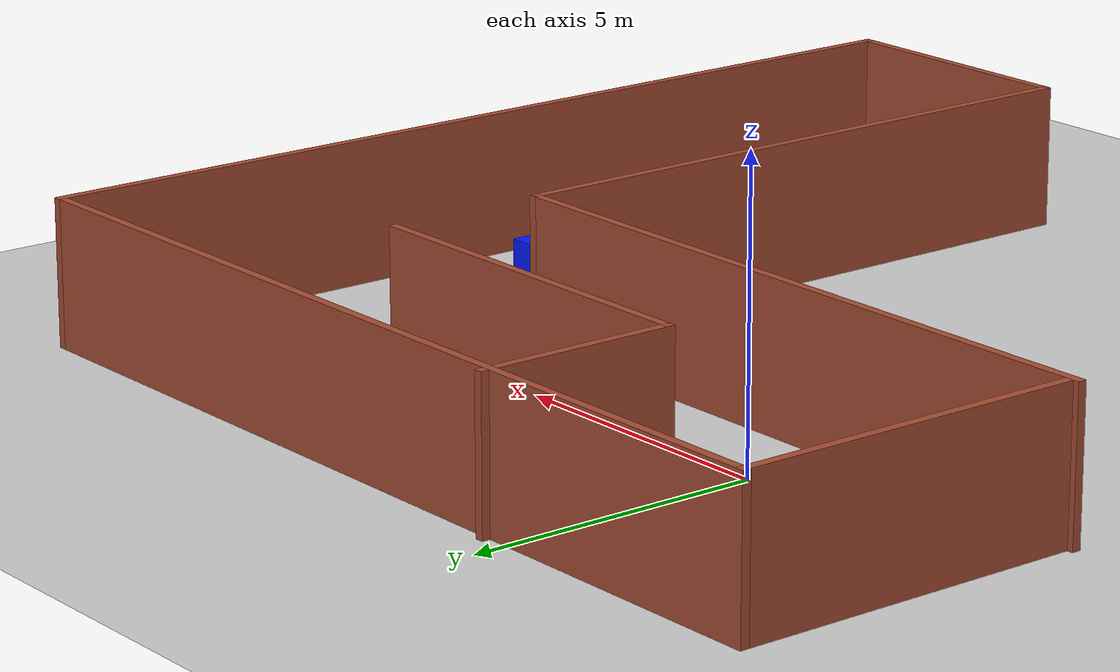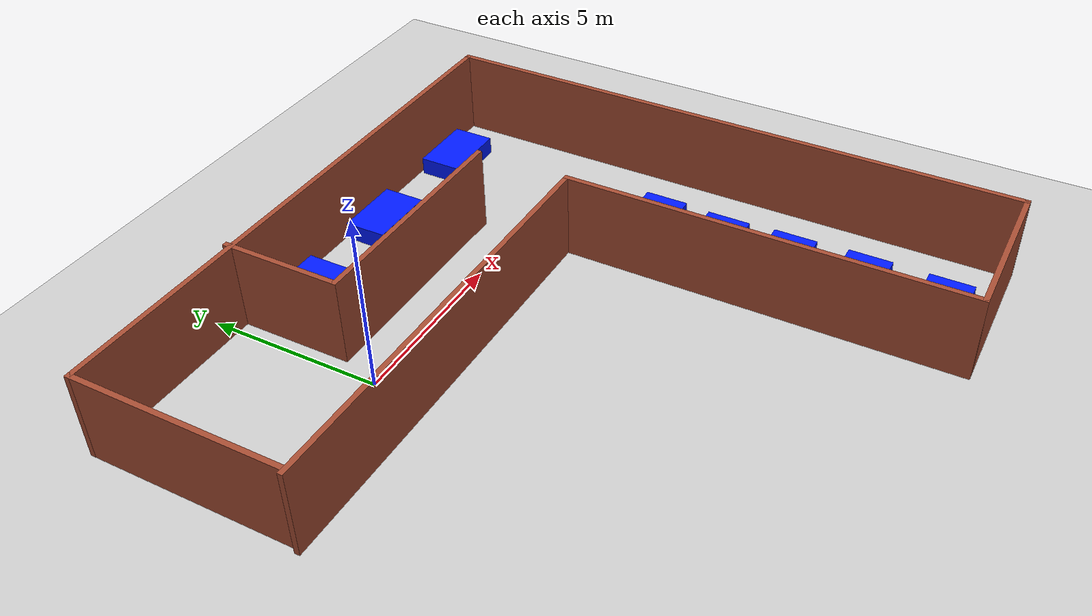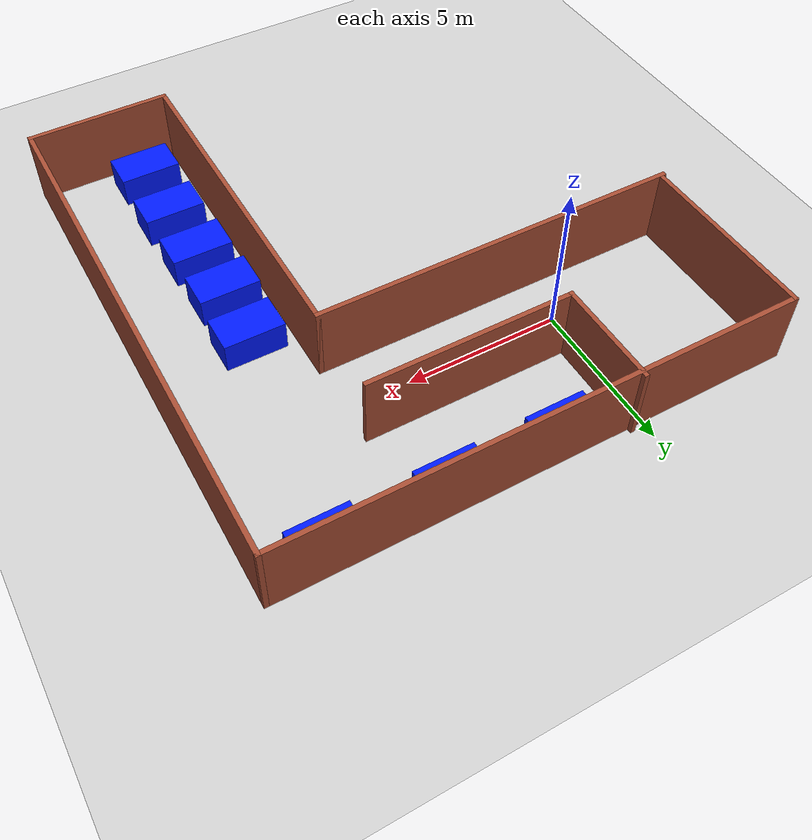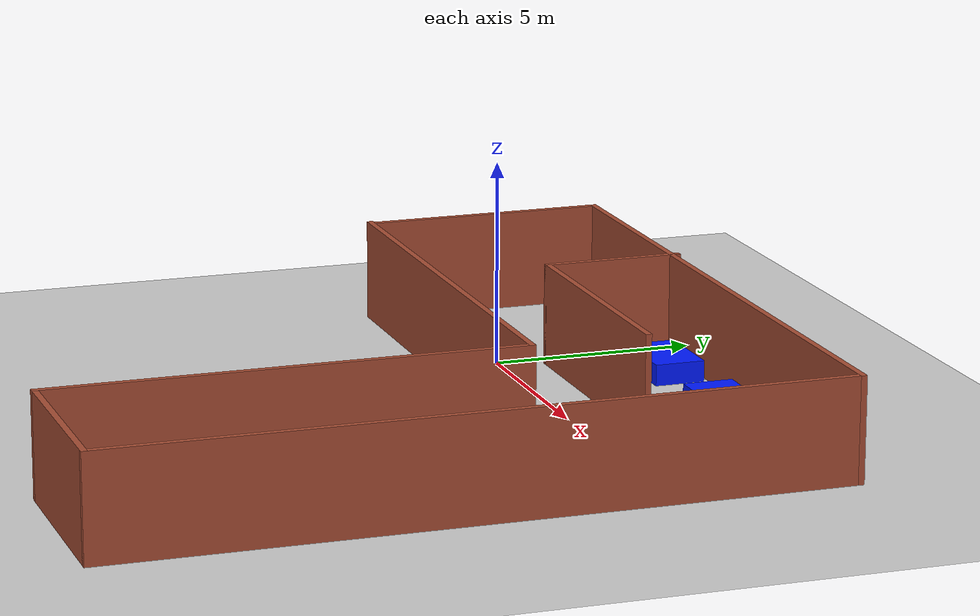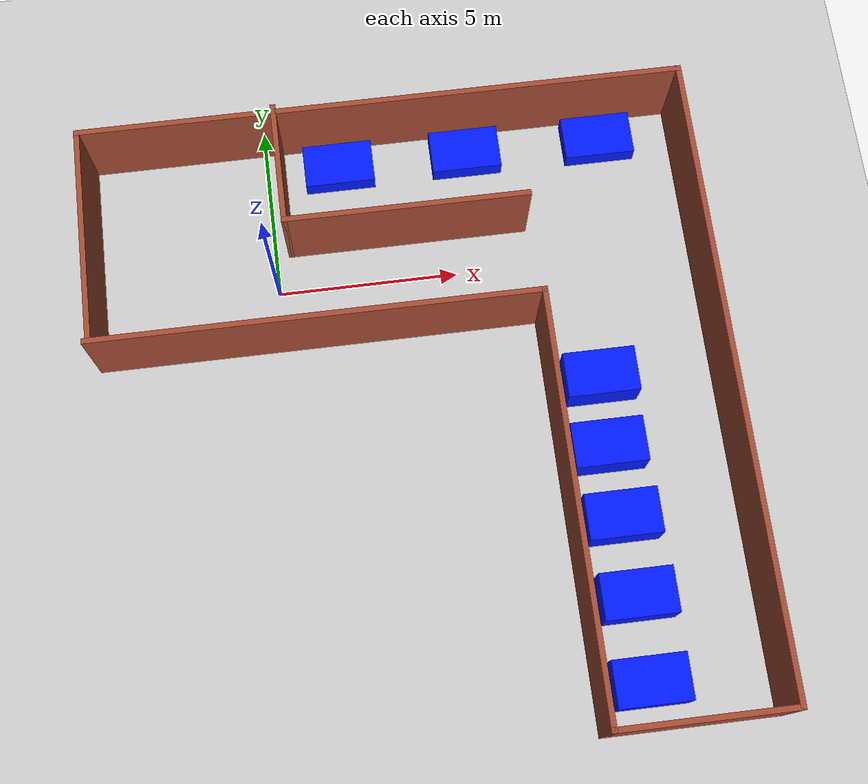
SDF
<sdf version="1.6">
 <world name="default">
  <light name="sun" type="directional">
   <pose>0 0 10 0 -0 0</pose>
   <diffuse>0.8 0.8 0.8 1</diffuse>
   <specular>0.2 0.2 0.2 1</specular>
   <attenuation>
    <range>1000</range>
    <constant>0.9</constant>
    <linear>0.01</linear>
    <quadratic>0.001</quadratic>
   </attenuation>
   <direction>-0.5 0.1 -0.9</direction>
  </light>
  <model name="ground_plane">
   <static>1</static>
   <link name="link">
    <collision name="collision">
     <geometry><plane><normal>0 0 1</normal><size>100 100</size></plane></geometry>
     <surface>
      <contact><collide_bitmask>65535</collide_bitmask></contact>
      <friction><ode><mu>100</mu><mu2>50</mu2></ode></friction>
     </surface>
    </collision>
    <visual name="visual">
     <cast_shadows>0</cast_shadows>
     <geometry><plane><normal>0 0 1</normal><size>100 100</size></plane></geometry>
     <material>
      <script><uri>file://media/materials/scripts/gazebo.material</uri><name>Gazebo/Grey</name></script>
     </material>
    </visual>
   </link>
  </model>
  <gravity>0 0 -9.8</gravity>
  <magnetic_field>6e-06 2.3e-05 -4.2e-05</magnetic_field>
  <atmosphere type="adiabatic"/>
  <physics name="default_physics" default="0" type="ode">
   <max_step_size>0.001</max_step_size>
   <real_time_factor>1</real_time_factor>
   <real_time_update_rate>1000</real_time_update_rate>
  </physics>
  <scene><ambient>0.4 0.4 0.4 1</ambient><background>0.7 0.7 0.7 1</background><shadows>1</shadows></scene>
  <audio><device>default</device></audio>
  <spherical_coordinates>
   <surface_model>EARTH_WGS84</surface_model>
   <latitude_deg>0</latitude_deg>
   <longitude_deg>0</longitude_deg>
   <elevation>0</elevation>
   <heading_deg>0</heading_deg>
  </spherical_coordinates>
  <model name="walls">
   <pose>3.31611 -4.23388 0 0 -0 0</pose>
   <link name="Wall_0">
    <collision name="Wall_0_Collision">
     <geometry><box><size>12.25 0.15 2.5</size></box></geometry>
     <pose>0 0 1.25 0 -0 0</pose>
    </collision>
    <visual name="Wall_0_Visual">
     <pose>0 0 1.25 0 -0 0</pose>
     <geometry><box><size>12.25 0.15 2.5</size></box></geometry>
     <material>
      <script><uri>file://media/materials/scripts/gazebo.material</uri><name>Gazebo/Bricks</name></script>
      <ambient>1 1 1 1</ambient>
     </material>
     <meta><layer>0</layer></meta>
    </visual>
    <pose>-2.3 2.60464 0 0 -0 0</pose>
   </link>
   <link name="Wall_10">
    <collision name="Wall_10_Collision">
     <geometry><box><size>6.75 0.15 2.5</size></box></geometry>
     <pose>0 0 1.25 0 -0 0</pose>
    </collision>
    <visual name="Wall_10_Visual">
     <pose>0 0 1.25 0 -0 0</pose>
     <geometry><box><size>6.75 0.15 2.5</size></box></geometry>
     <material>
      <script><uri>file://media/materials/scripts/gazebo.material</uri><name>Gazebo/Bricks</name></script>
      <ambient>1 1 1 1</ambient>
     </material>
     <meta><layer>0</layer></meta>
    </visual>
    <pose>0.421164 5.39536 0 0 -0 0</pose>
   </link>
   <link name="Wall_3">
    <collision name="Wall_3_Collision">
     <geometry><box><size>11.5 0.15 2.5</size></box></geometry>
     <pose>0 0 1.25 0 -0 0</pose>
    </collision>
    <visual name="Wall_3_Visual">
     <pose>0 0 1.25 0 -0 0</pose>
     <geometry><box><size>11.5 0.15 2.5</size></box></geometry>
     <material>
      <script><uri>file://media/materials/scripts/gazebo.material</uri><name>Gazebo/Bricks</name></script>
      <ambient>1 1 1 1</ambient>
     </material>
     <meta><layer>0</layer></meta>
    </visual>
    <pose>3.75 -3.07036 0 0 -0 -1.5708</pose>
   </link>
   <link name="Wall_4">
    <collision name="Wall_4_Collision">
     <geometry><box><size>4.75 0.15 2.5</size></box></geometry>
     <pose>0 0 1.25 0 -0 0</pose>
    </collision>
    <visual name="Wall_4_Visual">
     <pose>0 0 1.25 0 -0 0</pose>
     <geometry><box><size>4.75 0.15 2.5</size></box></geometry>
     <material>
      <script><uri>file://media/materials/scripts/gazebo.material</uri><name>Gazebo/Bricks</name></script>
      <ambient>1 1 1 1</ambient>
     </material>
     <meta><layer>0</layer></meta>
    </visual>
    <pose>6.05 -8.74536 0 0 -0 0</pose>
   </link>
   <link name="Wall_5">
    <collision name="Wall_5_Collision">
     <geometry><box><size>17.5 0.15 2.5</size></box></geometry>
     <pose>0 0 1.25 0 -0 0</pose>
    </collision>
    <visual name="Wall_5_Visual">
     <pose>0 0 1.25 0 -0 0</pose>
     <geometry><box><size>17.5 0.15 2.5</size></box></geometry>
     <material>
      <script><uri>file://media/materials/scripts/gazebo.material</uri><name>Gazebo/Bricks</name></script>
      <ambient>1 1 1 1</ambient>
     </material>
     <meta><layer>0</layer></meta>
    </visual>
    <pose>8.35 -0.070364 0 0 -0 1.5708</pose>
   </link>
   <link name="Wall_6">
    <collision name="Wall_6_Collision">
     <geometry><box><size>16.75 0.15 2.5</size></box></geometry>
     <pose>0 0 1.25 0 -0 0</pose>
    </collision>
    <visual name="Wall_6_Visual">
     <pose>0 0 1.25 0 -0 0</pose>
     <geometry><box><size>16.75 0.15 2.5</size></box></geometry>
     <material>
      <script><uri>file://media/materials/scripts/gazebo.material</uri><name>Gazebo/Bricks</name></script>
      <ambient>1 1 1 1</ambient>
     </material>
     <meta><layer>0</layer></meta>
    </visual>
    <pose>0.05 8.60464 0 0 -0 3.14159</pose>
   </link>
   <link name="Wall_7">
    <collision name="Wall_7_Collision">
     <geometry><box><size>6 0.15 2.5</size></box></geometry>
     <pose>0 0 1.25 0 -0 0</pose>
    </collision>
    <visual name="Wall_7_Visual">
     <pose>0 0 1.25 0 -0 0</pose>
     <geometry><box><size>6 0.15 2.5</size></box></geometry>
     <material>
      <script><uri>file://media/materials/scripts/gazebo.material</uri><name>Gazebo/Bricks</name></script>
      <ambient>1 1 1 1</ambient>
     </material>
     <meta><layer>0</layer></meta>
    </visual>
    <pose>-8.25 5.67964 0 0 -0 -1.5708</pose>
   </link>
   <link name="Wall_9">
    <collision name="Wall_9_Collision">
     <geometry><box><size>3.5 0.15 2.5</size></box></geometry>
     <pose>0 0 1.25 0 -0 0</pose>
    </collision>
    <visual name="Wall_9_Visual">
     <pose>0 0 1.25 0 -0 0</pose>
     <geometry><box><size>3.5 0.15 2.5</size></box></geometry>
     <material>
      <script><uri>file://media/materials/scripts/gazebo.material</uri><name>Gazebo/Bricks</name></script>
      <ambient>1 1 1 1</ambient>
     </material>
     <meta><layer>0</layer></meta>
    </visual>
    <pose>-2.87884 7.07036 0 0 -0 -1.5708</pose>
   </link>
   <static>1</static>
  </model>
  <model name="bed1">
   <link name="link">
    <inertial>
     <mass>1</mass>
     <inertia>
      <ixx>0.166667</ixx>
      <ixy>0</ixy>
      <ixz>0</ixz>
      <iyy>0.166667</iyy>
      <iyz>0</iyz>
      <izz>0.166667</izz>
     </inertia>
    </inertial>
    <visual name="visual">
     <geometry><box><size>1.96278 1.23701 1</size></box></geometry>
     <material>
      <script><name>Gazebo/Grey</name><uri>file://media/materials/scripts/gazebo.material</uri></script>
      <diffuse>0 0.1 1 0</diffuse>
      <shader type="vertex"><normal_map>__default__</normal_map></shader>
      <ambient>0.3 0.3 0.3 1</ambient>
      <specular>0.01 0.01 0.01 1</specular>
      <emissive>0 0 0 1</emissive>
     </material>
    </visual>
    <collision name="collision">
     <geometry><box><size>1.96278 1.23701 1</size></box></geometry>
     <surface>
      <friction>
       <ode><mu>1</mu><mu2>1</mu2><fdir1>0 0 0</fdir1><slip1>0</slip1><slip2>0</slip2></ode>
       <torsional>
        <coefficient>1</coefficient>
        <patch_radius>0</patch_radius>
        <surface_radius>0</surface_radius>
        <use_patch_radius>1</use_patch_radius>
        <ode><slip>0</slip></ode>
       </torsional>
      </friction>
      <bounce><restitution_coefficient>0</restitution_coefficient><threshold>1e+06</threshold></bounce>
      <contact>
       <collide_without_contact>0</collide_without_contact>
       <collide_without_contact_bitmask>1</collide_without_contact_bitmask>
       <collide_bitmask>1</collide_bitmask>
       <ode>
        <soft_cfm>0</soft_cfm>
        <soft_erp>0.2</soft_erp>
        <kp>1e+13</kp>
        <kd>1</kd>
        <max_vel>0.01</max_vel>
        <min_depth>0</min_depth>
       </ode>
       <bullet>
        <split_impulse>1</split_impulse>
        <split_impulse_penetration_threshold>-0.01</split_impulse_penetration_threshold>
        <soft_cfm>0</soft_cfm>
        <soft_erp>0.2</soft_erp>
        <kp>1e+13</kp>
        <kd>1</kd>
       </bullet>
      </contact>
     </surface>
    </collision>
   </link>
   <static>0</static>
   <pose>8.44882 -11.8287 0.5 0 -0 0</pose>
  </model>
  <model name="bed1_clone">
   <link name="link">
    <inertial>
     <mass>1</mass>
     <inertia>
      <ixx>0.166667</ixx>
      <ixy>0</ixy>
      <ixz>0</ixz>
      <iyy>0.166667</iyy>
      <iyz>0</iyz>
      <izz>0.166667</izz>
     </inertia>
    </inertial>
    <visual name="visual">
     <geometry><box><size>1.96278 1.23701 1</size></box></geometry>
     <material>
      <script><name>Gazebo/Grey</name><uri>file://media/materials/scripts/gazebo.material</uri></script>
      <diffuse>0 0.1 1 0</diffuse>
      <shader type="vertex"><normal_map>__default__</normal_map></shader>
      <ambient>0.3 0.3 0.3 1</ambient>
      <specular>0.01 0.01 0.01 1</specular>
      <emissive>0 0 0 1</emissive>
     </material>
    </visual>
    <collision name="collision">
     <geometry><box><size>1.96278 1.23701 1</size></box></geometry>
     <surface>
      <friction>
       <ode><mu>1</mu><mu2>1</mu2><fdir1>0 0 0</fdir1><slip1>0</slip1><slip2>0</slip2></ode>
       <torsional>
        <coefficient>1</coefficient>
        <patch_radius>0</patch_radius>
        <surface_radius>0</surface_radius>
        <use_patch_radius>1</use_patch_radius>
        <ode><slip>0</slip></ode>
       </torsional>
      </friction>
      <bounce><restitution_coefficient>0</restitution_coefficient><threshold>1e+06</threshold></bounce>
      <contact>
       <collide_without_contact>0</collide_without_contact>
       <collide_without_contact_bitmask>1</collide_without_contact_bitmask>
       <collide_bitmask>1</collide_bitmask>
       <ode>
        <soft_cfm>0</soft_cfm>
        <soft_erp>0.2</soft_erp>
        <kp>1e+13</kp>
        <kd>1</kd>
        <max_vel>0.01</max_vel>
        <min_depth>0</min_depth>
       </ode>
       <bullet>
        <split_impulse>1</split_impulse>
        <split_impulse_penetration_threshold>-0.01</split_impulse_penetration_threshold>
        <soft_cfm>0</soft_cfm>
        <soft_erp>0.2</soft_erp>
        <kp>1e+13</kp>
        <kd>1</kd>
       </bullet>
      </contact>
     </surface>
    </collision>
   </link>
   <static>0</static>
   <pose>8.47796 -9.61239 0.5 0 -0 0</pose>
  </model>
  <model name="bed1_clone_0">
   <link name="link">
    <inertial>
     <mass>1</mass>
     <inertia>
      <ixx>0.166667</ixx>
      <ixy>0</ixy>
      <ixz>0</ixz>
      <iyy>0.166667</iyy>
      <iyz>0</iyz>
      <izz>0.166667</izz>
     </inertia>
    </inertial>
    <visual name="visual">
     <geometry><box><size>1.96278 1.23701 1</size></box></geometry>
     <material>
      <script><name>Gazebo/Grey</name><uri>file://media/materials/scripts/gazebo.material</uri></script>
      <diffuse>0 0.1 1 0</diffuse>
      <shader type="vertex"><normal_map>__default__</normal_map></shader>
      <ambient>0.3 0.3 0.3 1</ambient>
      <specular>0.01 0.01 0.01 1</specular>
      <emissive>0 0 0 1</emissive>
     </material>
    </visual>
    <collision name="collision">
     <geometry><box><size>1.96278 1.23701 1</size></box></geometry>
     <surface>
      <friction>
       <ode><mu>1</mu><mu2>1</mu2><fdir1>0 0 0</fdir1><slip1>0</slip1><slip2>0</slip2></ode>
       <torsional>
        <coefficient>1</coefficient>
        <patch_radius>0</patch_radius>
        <surface_radius>0</surface_radius>
        <use_patch_radius>1</use_patch_radius>
        <ode><slip>0</slip></ode>
       </torsional>
      </friction>
      <bounce><restitution_coefficient>0</restitution_coefficient><threshold>1e+06</threshold></bounce>
      <contact>
       <collide_without_contact>0</collide_without_contact>
       <collide_without_contact_bitmask>1</collide_without_contact_bitmask>
       <collide_bitmask>1</collide_bitmask>
       <ode>
        <soft_cfm>0</soft_cfm>
        <soft_erp>0.2</soft_erp>
        <kp>1e+13</kp>
        <kd>1</kd>
        <max_vel>0.01</max_vel>
        <min_depth>0</min_depth>
       </ode>
       <bullet>
        <split_impulse>1</split_impulse>
        <split_impulse_penetration_threshold>-0.01</split_impulse_penetration_threshold>
        <soft_cfm>0</soft_cfm>
        <soft_erp>0.2</soft_erp>
        <kp>1e+13</kp>
        <kd>1</kd>
       </bullet>
      </contact>
     </surface>
    </collision>
   </link>
   <static>0</static>
   <pose>8.41969 -7.507 0.5 0 -0 0</pose>
  </model>
  <model name="bed1_clone_1">
   <link name="link">
    <inertial>
     <mass>1</mass>
     <inertia>
      <ixx>0.166667</ixx>
      <ixy>0</ixy>
      <ixz>0</ixz>
      <iyy>0.166667</iyy>
      <iyz>0</iyz>
      <izz>0.166667</izz>
     </inertia>
    </inertial>
    <visual name="visual">
     <geometry><box><size>1.96278 1.23701 1</size></box></geometry>
     <material>
      <script><name>Gazebo/Grey</name><uri>file://media/materials/scripts/gazebo.material</uri></script>
      <diffuse>0 0.1 1 0</diffuse>
      <shader type="vertex"><normal_map>__default__</normal_map></shader>
      <ambient>0.3 0.3 0.3 1</ambient>
      <specular>0.01 0.01 0.01 1</specular>
      <emissive>0 0 0 1</emissive>
     </material>
    </visual>
    <collision name="collision">
     <geometry><box><size>1.96278 1.23701 1</size></box></geometry>
     <surface>
      <friction>
       <ode><mu>1</mu><mu2>1</mu2><fdir1>0 0 0</fdir1><slip1>0</slip1><slip2>0</slip2></ode>
       <torsional>
        <coefficient>1</coefficient>
        <patch_radius>0</patch_radius>
        <surface_radius>0</surface_radius>
        <use_patch_radius>1</use_patch_radius>
        <ode><slip>0</slip></ode>
       </torsional>
      </friction>
      <bounce><restitution_coefficient>0</restitution_coefficient><threshold>1e+06</threshold></bounce>
      <contact>
       <collide_without_contact>0</collide_without_contact>
       <collide_without_contact_bitmask>1</collide_without_contact_bitmask>
       <collide_bitmask>1</collide_bitmask>
       <ode>
        <soft_cfm>0</soft_cfm>
        <soft_erp>0.2</soft_erp>
        <kp>1e+13</kp>
        <kd>1</kd>
        <max_vel>0.01</max_vel>
        <min_depth>0</min_depth>
       </ode>
       <bullet>
        <split_impulse>1</split_impulse>
        <split_impulse_penetration_threshold>-0.01</split_impulse_penetration_threshold>
        <soft_cfm>0</soft_cfm>
        <soft_erp>0.2</soft_erp>
        <kp>1e+13</kp>
        <kd>1</kd>
       </bullet>
      </contact>
     </surface>
    </collision>
   </link>
   <static>0</static>
   <pose>8.35928 -5.55696 0.5 0 -0 0</pose>
  </model>
  <model name="bed1_clone_2">
   <link name="link">
    <inertial>
     <mass>1</mass>
     <inertia>
      <ixx>0.166667</ixx>
      <ixy>0</ixy>
      <ixz>0</ixz>
      <iyy>0.166667</iyy>
      <iyz>0</iyz>
      <izz>0.166667</izz>
     </inertia>
    </inertial>
    <visual name="visual">
     <geometry><box><size>1.96278 1.23701 1</size></box></geometry>
     <material>
      <script><name>Gazebo/Grey</name><uri>file://media/materials/scripts/gazebo.material</uri></script>
      <diffuse>0 0.1 1 0</diffuse>
      <shader type="vertex"><normal_map>__default__</normal_map></shader>
      <ambient>0.3 0.3 0.3 1</ambient>
      <specular>0.01 0.01 0.01 1</specular>
      <emissive>0 0 0 1</emissive>
     </material>
    </visual>
    <collision name="collision">
     <geometry><box><size>1.96278 1.23701 1</size></box></geometry>
     <surface>
      <friction>
       <ode><mu>1</mu><mu2>1</mu2><fdir1>0 0 0</fdir1><slip1>0</slip1><slip2>0</slip2></ode>
       <torsional>
        <coefficient>1</coefficient>
        <patch_radius>0</patch_radius>
        <surface_radius>0</surface_radius>
        <use_patch_radius>1</use_patch_radius>
        <ode><slip>0</slip></ode>
       </torsional>
      </friction>
      <bounce><restitution_coefficient>0</restitution_coefficient><threshold>1e+06</threshold></bounce>
      <contact>
       <collide_without_contact>0</collide_without_contact>
       <collide_without_contact_bitmask>1</collide_without_contact_bitmask>
       <collide_bitmask>1</collide_bitmask>
       <ode>
        <soft_cfm>0</soft_cfm>
        <soft_erp>0.2</soft_erp>
        <kp>1e+13</kp>
        <kd>1</kd>
        <max_vel>0.01</max_vel>
        <min_depth>0</min_depth>
       </ode>
       <bullet>
        <split_impulse>1</split_impulse>
        <split_impulse_penetration_threshold>-0.01</split_impulse_penetration_threshold>
        <soft_cfm>0</soft_cfm>
        <soft_erp>0.2</soft_erp>
        <kp>1e+13</kp>
        <kd>1</kd>
       </bullet>
      </contact>
     </surface>
    </collision>
   </link>
   <static>0</static>
   <pose>8.45206 -3.60462 0.5 0 -0 0</pose>
  </model>
  <model name="bed1_0">
   <link name="link">
    <inertial>
     <mass>1</mass>
     <inertia>
      <ixx>0.166667</ixx>
      <ixy>0</ixy>
      <ixz>0</ixz>
      <iyy>0.166667</iyy>
      <iyz>0</iyz>
      <izz>0.166667</izz>
     </inertia>
    </inertial>
    <visual name="visual">
     <geometry><box><size>1.96278 1.23701 1</size></box></geometry>
     <material>
      <script><name>Gazebo/Grey</name><uri>file://media/materials/scripts/gazebo.material</uri></script>
      <diffuse>0 0.1 1 0</diffuse>
      <shader type="vertex"><normal_map>__default__</normal_map></shader>
      <ambient>0.3 0.3 0.3 1</ambient>
      <specular>0.01 0.01 0.01 1</specular>
      <emissive>0 0 0 1</emissive>
     </material>
    </visual>
    <collision name="collision">
     <geometry><box><size>1.96278 1.23701 1</size></box></geometry>
     <surface>
      <friction>
       <ode><mu>1</mu><mu2>1</mu2><fdir1>0 0 0</fdir1><slip1>0</slip1><slip2>0</slip2></ode>
       <torsional>
        <coefficient>1</coefficient>
        <patch_radius>0</patch_radius>
        <surface_radius>0</surface_radius>
        <use_patch_radius>1</use_patch_radius>
        <ode><slip>0</slip></ode>
       </torsional>
      </friction>
      <bounce><restitution_coefficient>0</restitution_coefficient><threshold>1e+06</threshold></bounce>
      <contact>
       <collide_without_contact>0</collide_without_contact>
       <collide_without_contact_bitmask>1</collide_without_contact_bitmask>
       <collide_bitmask>1</collide_bitmask>
       <ode>
        <soft_cfm>0</soft_cfm>
        <soft_erp>0.2</soft_erp>
        <kp>1e+13</kp>
        <kd>1</kd>
        <max_vel>0.01</max_vel>
        <min_depth>0</min_depth>
       </ode>
       <bullet>
        <split_impulse>1</split_impulse>
        <split_impulse_penetration_threshold>-0.01</split_impulse_penetration_threshold>
        <soft_cfm>0</soft_cfm>
        <soft_erp>0.2</soft_erp>
        <kp>1e+13</kp>
        <kd>1</kd>
       </bullet>
      </contact>
     </surface>
    </collision>
   </link>
   <static>0</static>
   <pose>2.04847 3.59908 0 0 -0 0</pose>
  </model>
  <model name="bed1_1">
   <link name="link">
    <inertial>
     <mass>1</mass>
     <inertia>
      <ixx>0.166667</ixx>
      <ixy>0</ixy>
      <ixz>0</ixz>
      <iyy>0.166667</iyy>
      <iyz>0</iyz>
      <izz>0.166667</izz>
     </inertia>
    </inertial>
    <visual name="visual">
     <geometry><box><size>1.96278 1.23701 1</size></box></geometry>
     <material>
      <script><name>Gazebo/Grey</name><uri>file://media/materials/scripts/gazebo.material</uri></script>
      <diffuse>0 0.1 1 0</diffuse>
      <shader type="vertex"><normal_map>__default__</normal_map></shader>
      <ambient>0.3 0.3 0.3 1</ambient>
      <specular>0.01 0.01 0.01 1</specular>
      <emissive>0 0 0 1</emissive>
     </material>
    </visual>
    <collision name="collision">
     <geometry><box><size>1.96278 1.23701 1</size></box></geometry>
     <surface>
      <friction>
       <ode><mu>1</mu><mu2>1</mu2><fdir1>0 0 0</fdir1><slip1>0</slip1><slip2>0</slip2></ode>
       <torsional>
        <coefficient>1</coefficient>
        <patch_radius>0</patch_radius>
        <surface_radius>0</surface_radius>
        <use_patch_radius>1</use_patch_radius>
        <ode><slip>0</slip></ode>
       </torsional>
      </friction>
      <bounce><restitution_coefficient>0</restitution_coefficient><threshold>1e+06</threshold></bounce>
      <contact>
       <collide_without_contact>0</collide_without_contact>
       <collide_without_contact_bitmask>1</collide_without_contact_bitmask>
       <collide_bitmask>1</collide_bitmask>
       <ode>
        <soft_cfm>0</soft_cfm>
        <soft_erp>0.2</soft_erp>
        <kp>1e+13</kp>
        <kd>1</kd>
        <max_vel>0.01</max_vel>
        <min_depth>0</min_depth>
       </ode>
       <bullet>
        <split_impulse>1</split_impulse>
        <split_impulse_penetration_threshold>-0.01</split_impulse_penetration_threshold>
        <soft_cfm>0</soft_cfm>
        <soft_erp>0.2</soft_erp>
        <kp>1e+13</kp>
        <kd>1</kd>
       </bullet>
      </contact>
     </surface>
    </collision>
   </link>
   <static>0</static>
   <pose>5.69072 3.6161 0 0 -0 0</pose>
  </model>
  <model name="bed1_2">
   <link name="link">
    <inertial>
     <mass>1</mass>
     <inertia>
      <ixx>0.166667</ixx>
      <ixy>0</ixy>
      <ixz>0</ixz>
      <iyy>0.166667</iyy>
      <iyz>0</iyz>
      <izz>0.166667</izz>
     </inertia>
    </inertial>
    <visual name="visual">
     <geometry><box><size>1.96278 1.23701 1</size></box></geometry>
     <material>
      <script><name>Gazebo/Grey</name><uri>file://media/materials/scripts/gazebo.material</uri></script>
      <diffuse>0 0.1 1 0</diffuse>
      <shader type="vertex"><normal_map>__default__</normal_map></shader>
      <ambient>0.3 0.3 0.3 1</ambient>
      <specular>0.01 0.01 0.01 1</specular>
      <emissive>0 0 0 1</emissive>
     </material>
    </visual>
    <collision name="collision">
     <geometry><box><size>1.96278 1.23701 1</size></box></geometry>
     <surface>
      <friction>
       <ode><mu>1</mu><mu2>1</mu2><fdir1>0 0 0</fdir1><slip1>0</slip1><slip2>0</slip2></ode>
       <torsional>
        <coefficient>1</coefficient>
        <patch_radius>0</patch_radius>
        <surface_radius>0</surface_radius>
        <use_patch_radius>1</use_patch_radius>
        <ode><slip>0</slip></ode>
       </torsional>
      </friction>
      <bounce><restitution_coefficient>0</restitution_coefficient><threshold>1e+06</threshold></bounce>
      <contact>
       <collide_without_contact>0</collide_without_contact>
       <collide_without_contact_bitmask>1</collide_without_contact_bitmask>
       <collide_bitmask>1</collide_bitmask>
       <ode>
        <soft_cfm>0</soft_cfm>
        <soft_erp>0.2</soft_erp>
        <kp>1e+13</kp>
        <kd>1</kd>
        <max_vel>0.01</max_vel>
        <min_depth>0</min_depth>
       </ode>
       <bullet>
        <split_impulse>1</split_impulse>
        <split_impulse_penetration_threshold>-0.01</split_impulse_penetration_threshold>
        <soft_cfm>0</soft_cfm>
        <soft_erp>0.2</soft_erp>
        <kp>1e+13</kp>
        <kd>1</kd>
       </bullet>
      </contact>
     </surface>
    </collision>
   </link>
   <static>0</static>
   <pose>9.52542 3.5986 0 0 -0 0</pose>
  </model>
 </world>
</sdf>
